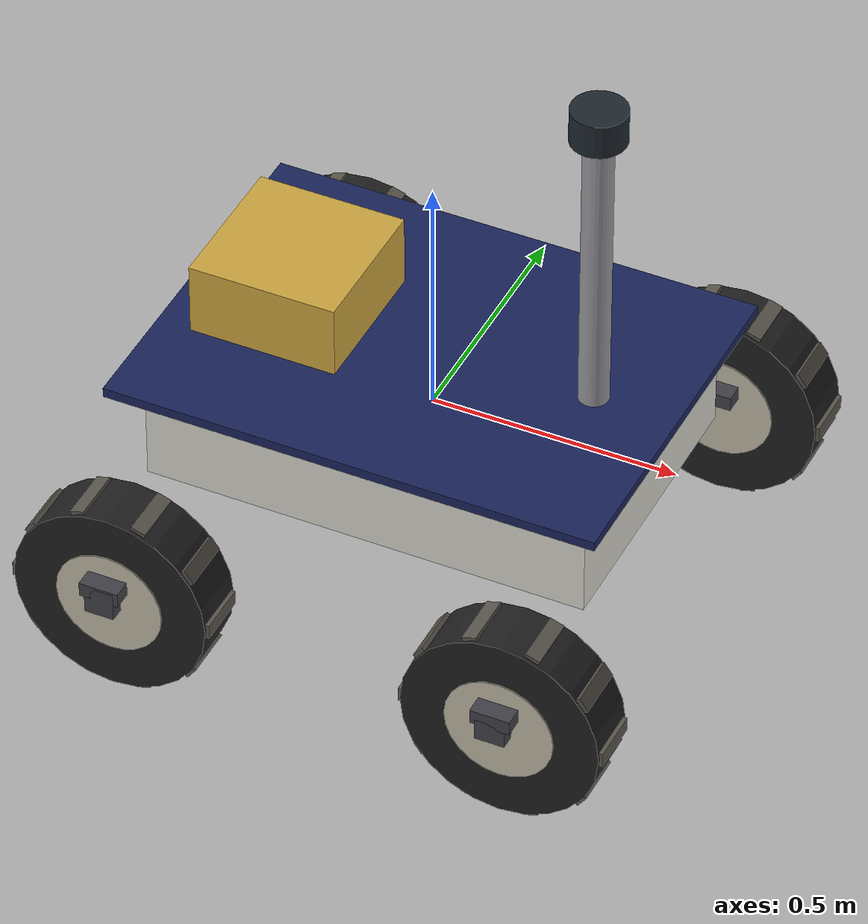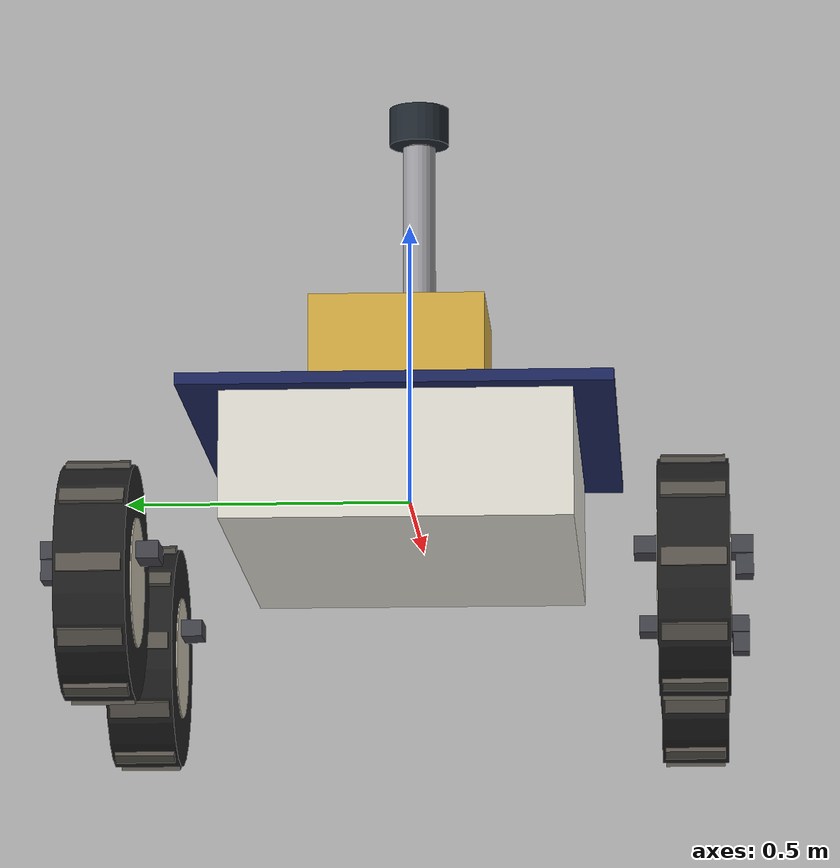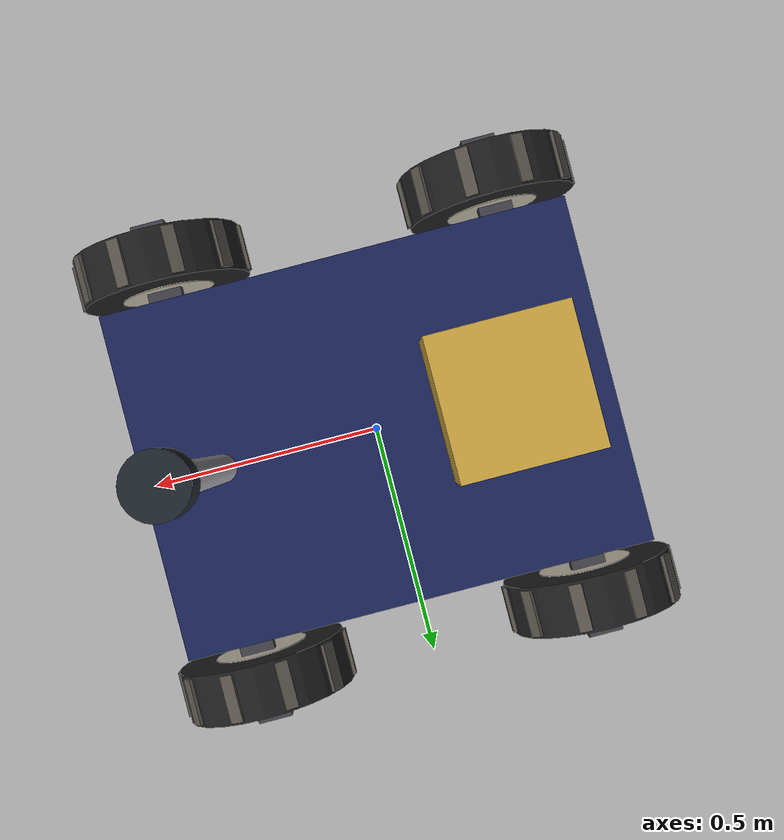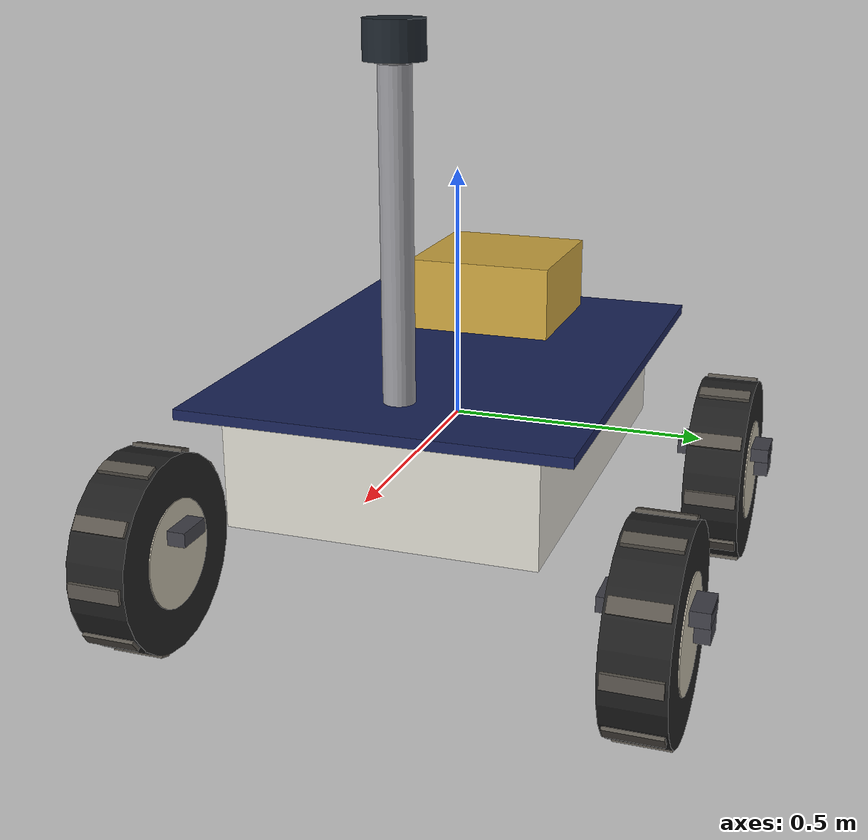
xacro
<?xml version="1.0"?>
<robot xmlns:xacro="http://ros.org/wiki/xacro" name="mars_rover">
  <xacro:arg name="enable_control" default="true"/>
  <xacro:arg name="sim_backend" default="classic"/>
  <xacro:arg name="actuator_watchdog" default="0.3"/>
  <xacro:arg name="enable_lidar" default="true"/>
  <xacro:arg name="lidar_profile" default="lite"/>
  <xacro:arg name="lidar_gpu" default="false"/>
  <xacro:arg name="lidar_channels" default=""/>
  <xacro:arg name="lidar_samples" default=""/>
  <xacro:arg name="lidar_vfov_deg" default=""/>
  <xacro:arg name="lidar_max_range" default="100.0"/>
  <xacro:arg name="mast_height" default="0.60"/>
  <xacro:arg name="wheel_collision" default="sphere"/>
  <xacro:arg name="wheel_stall_torque" default="8.0"/>
  <xacro:arg name="wheel_no_load_speed" default="10.0"/>
  <xacro:arg name="wheel_mu" default="0.8"/>
  <xacro:arg name="body_mass" default="26.0"/>
  <xacro:arg name="ground_truth_rate" default="50"/>
  <xacro:arg name="ground_truth_tf" default="false"/>
  <xacro:arg name="suspension_mode" default="spring"/>
  <xacro:arg name="strut_inertia_size" default="0.10"/>

  <xacro:include filename="modules/inertia.xacro"/>
  <xacro:include filename="modules/swerve_module.xacro"/>
  <xacro:include filename="sensors/imu.urdf.xacro"/>
  <xacro:include filename="sensors/lidar3d.urdf.xacro"/>

  <!-- Chassis -->
  <xacro:property name="body_length" value="0.90"/>
  <xacro:property name="body_width" value="0.60"/>
  <xacro:property name="body_height" value="0.22"/>
  <xacro:property name="body_mass" value="$(arg body_mass)"/>
  <xacro:property name="ground_clearance" value="0.30"/>  <!-- body bottom above ground at rest -->
  <xacro:property name="panel_mass" value="3.0"/>
  <xacro:property name="ebox_mass" value="3.0"/>
  <xacro:property name="mast_height" value="$(arg mast_height)"/>
  <xacro:property name="mast_mass" value="1.0"/>
  <xacro:property name="mast_x" value="${body_length/2-0.12}"/>
  <!-- Modules -->
  <xacro:property name="module_x" value="0.40"/>
  <xacro:property name="module_y" value="0.50"/>
  <xacro:property name="wheel_radius" value="0.20"/>
  <xacro:property name="wheel_width" value="0.12"/>
  <xacro:property name="wheel_mass" value="2.5"/>
  <xacro:property name="grouser_count" value="10"/>
  <xacro:property name="strut_mass" value="1.0"/>
  <xacro:property name="axle_mass" value="1.5"/>
  <xacro:property name="fork_offset" value="0.085"/>
  <!-- Vertical chain: body bottom -> strut (0.04) -> fork drop (0.06) -> wheel centre
       so that wheel centre = ground_clearance - 0.10 = 0.20 = wheel radius. -->
  <xacro:property name="strut_length" value="0.04"/>
  <xacro:property name="fork_drop" value="${ground_clearance - strut_length - wheel_radius}"/>
  <xacro:property name="suspension_travel" value="0.10"/>
  <xacro:property name="suspension_mode" value="$(arg suspension_mode)"/>
  <xacro:property name="strut_inertia_size" value="$(arg strut_inertia_size)"/>
  <xacro:property name="suspension_stiffness" value="1500.0"/>
  <xacro:property name="suspension_damping" value="110.0"/>
  <xacro:property name="suspension_reference" value="-0.0198"/>
  <xacro:property name="steering_torque" value="25.0"/>
  <xacro:property name="steering_rate" value="3.0"/>
  <xacro:property name="wheel_stall_torque" value="$(arg wheel_stall_torque)"/>
  <xacro:property name="wheel_no_load_speed" value="$(arg wheel_no_load_speed)"/>
  <xacro:property name="wheel_collision" value="$(arg wheel_collision)"/>
  <xacro:property name="wheel_mu" value="$(arg wheel_mu)"/>
  <xacro:property name="wheel_kp" value="1000000"/>
  <xacro:property name="wheel_kd" value="100"/>
  <xacro:property name="wheel_min_depth" value="0.002"/>
  <xacro:property name="wheel_max_vel" value="1.0"/>
  <xacro:property name="sim_backend" value="$(arg sim_backend)"/>

  <!-- Massless ROS root keeps KDL quiet; coincident with base_link. -->
  <link name="base_root"/>
  <joint name="base_root_joint" type="fixed">
    <parent link="base_root"/><child link="base_link"/>
    <origin xyz="0 0 0"/>
  </joint>

  <link name="base_link">
    <visual>
      <geometry><box size="${body_length} ${body_width} ${body_height}"/></geometry>
      <material name="body_white"><color rgba="0.85 0.84 0.80 1"/></material>
    </visual>
    <collision>
      <geometry><box size="${body_length} ${body_width} ${body_height}"/></geometry>
    </collision>
    <!-- Solar deck -->
    <visual>
      <origin xyz="0 0 ${body_height/2+0.01}"/>
      <geometry><box size="${body_length+0.10} ${body_width+0.14} 0.02"/></geometry>
      <material name="solar_blue"><color rgba="0.10 0.14 0.35 1"/></material>
    </visual>
    <!-- Electronics box at the rear of the deck -->
    <visual>
      <origin xyz="${-body_length/2+0.17} 0 ${body_height/2+0.02+0.075}"/>
      <geometry><box size="0.30 0.30 0.15"/></geometry>
      <material name="ebox_gold"><color rgba="0.80 0.65 0.25 1"/></material>
    </visual>
    <!-- Instrument mast, front-centre of the deck -->
    <visual>
      <origin xyz="${mast_x} 0 ${body_height/2+0.02+mast_height/2}"/>
      <geometry><cylinder radius="0.03" length="${mast_height}"/></geometry>
      <material name="mast_grey"><color rgba="0.6 0.6 0.62 1"/></material>
    </visual>
    <!-- Combined inertia of body, deck, e-box and mast about the body centre.
         Payload masses are small and placed by parallel-axis terms below. -->
    <inertial>
      <mass value="${body_mass + panel_mass + ebox_mass + mast_mass}"/>
      <origin xyz="${(ebox_mass*(-body_length/2+0.17) + mast_mass*mast_x)/(body_mass+panel_mass+ebox_mass+mast_mass)} 0 ${(panel_mass*(body_height/2+0.01) + ebox_mass*(body_height/2+0.095) + mast_mass*(body_height/2+0.02+mast_height/2))/(body_mass+panel_mass+ebox_mass+mast_mass)}"/>
      <inertia ixx="${body_mass*(body_width**2+body_height**2)/12 + panel_mass*((body_width+0.14)**2+0.02**2)/12 + panel_mass*(body_height/2+0.01)**2 + ebox_mass*(0.3**2+0.15**2)/12 + ebox_mass*(body_height/2+0.095)**2 + mast_mass*(3*0.03**2+mast_height**2)/12 + mast_mass*(body_height/2+0.02+mast_height/2)**2}"
               ixy="0" ixz="0"
               iyy="${body_mass*(body_length**2+body_height**2)/12 + panel_mass*((body_length+0.10)**2+0.02**2)/12 + panel_mass*(body_height/2+0.01)**2 + ebox_mass*(0.3**2+0.15**2)/12 + ebox_mass*((body_height/2+0.095)**2+(-body_length/2+0.17)**2) + mast_mass*(3*0.03**2+mast_height**2)/12 + mast_mass*((body_height/2+0.02+mast_height/2)**2+mast_x**2)}"
               iyz="0"
               izz="${body_mass*(body_length**2+body_width**2)/12 + panel_mass*((body_length+0.10)**2+(body_width+0.14)**2)/12 + ebox_mass*(0.3**2+0.3**2)/12 + ebox_mass*(-body_length/2+0.17)**2 + mast_mass*0.03**2/2 + mast_mass*mast_x**2}"/>
    </inertial>
  </link>
  <gazebo reference="base_link"><material>Gazebo/White</material></gazebo>

  <xacro:swerve_module prefix="front_left" x="${module_x}" y="${module_y}" side="1"/>
  <xacro:swerve_module prefix="front_right" x="${module_x}" y="${-module_y}" side="-1"/>
  <xacro:swerve_module prefix="rear_left" x="${-module_x}" y="${module_y}" side="1"/>
  <xacro:swerve_module prefix="rear_right" x="${-module_x}" y="${-module_y}" side="-1"/>

  <xacro:rover_imu parent="base_link" backend="${sim_backend}"/>
  <xacro:if value="$(arg enable_lidar)">
    <xacro:rover_lidar3d parent="base_link" xyz="${mast_x} 0 ${body_height/2+0.02+mast_height+0.04}"
                         profile="$(arg lidar_profile)" gpu="$(arg lidar_gpu)" channels="$(arg lidar_channels)"
                         samples="$(arg lidar_samples)" vfov_deg="$(arg lidar_vfov_deg)" max_range="$(arg lidar_max_range)"
                         backend="${sim_backend}"/>
  </xacro:if>

  <xacro:if value="$(arg enable_control)">
    <xacro:if value="${sim_backend == 'classic'}">
      <gazebo>
        <plugin name="swerve_actuators" filename="librover_swerve_actuators.so">
          <watchdog_timeout>$(arg actuator_watchdog)</watchdog_timeout>
          <ground_truth_rate>$(arg ground_truth_rate)</ground_truth_rate>
          <ground_truth_tf>$(arg ground_truth_tf)</ground_truth_tf>
          <steering_kp>60.0</steering_kp>
          <steering_kd>3.0</steering_kd>
          <wheel_kp>3.0</wheel_kp>
          <wheel_ki>20.0</wheel_ki>
        </plugin>
      </gazebo>
    </xacro:if>
    <xacro:if value="${sim_backend == 'fortress'}">
      <gazebo>
        <plugin filename="librover_swerve_gz_system.so" name="rover_sim::SwerveGzSystem">
          <watchdog_timeout>$(arg actuator_watchdog)</watchdog_timeout>
          <ground_truth_rate>$(arg ground_truth_rate)</ground_truth_rate>
          <ground_truth_tf>$(arg ground_truth_tf)</ground_truth_tf>
          <steering_kp>60.0</steering_kp>
          <steering_kd>3.0</steering_kd>
          <wheel_kp>3.0</wheel_kp>
          <wheel_ki>20.0</wheel_ki>
          <hold_kp>40.0</hold_kp>
          <hold_kd>6.0</hold_kd>
          <wheel_radius>${wheel_radius}</wheel_radius>
        </plugin>
      </gazebo>
    </xacro:if>
  </xacro:if>
</robot>

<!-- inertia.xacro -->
<!-- Original inertia helpers for rover_sim (solid primitives about their centroid). -->
<robot xmlns:xacro="http://ros.org/wiki/xacro">
  <xacro:macro name="inertial_box" params="mass x y z *origin">
    <inertial>
      <mass value="${mass}"/>
      <xacro:insert_block name="origin"/>
      <inertia ixx="${mass*(y*y+z*z)/12.0}" ixy="0" ixz="0"
               iyy="${mass*(x*x+z*z)/12.0}" iyz="0"
               izz="${mass*(x*x+y*y)/12.0}"/>
    </inertial>
  </xacro:macro>
  <!-- Cylinder with its axis along local Z. -->
  <xacro:macro name="inertial_cylinder" params="mass radius length *origin">
    <inertial>
      <mass value="${mass}"/>
      <xacro:insert_block name="origin"/>
      <inertia ixx="${mass*(3.0*radius*radius+length*length)/12.0}" ixy="0" ixz="0"
               iyy="${mass*(3.0*radius*radius+length*length)/12.0}" iyz="0"
               izz="${mass*radius*radius/2.0}"/>
    </inertial>
  </xacro:macro>
  <xacro:macro name="inertial_sphere" params="mass radius *origin">
    <inertial>
      <mass value="${mass}"/>
      <xacro:insert_block name="origin"/>
      <inertia ixx="${0.4*mass*radius*radius}" ixy="0" ixz="0"
               iyy="${0.4*mass*radius*radius}" iyz="0"
               izz="${0.4*mass*radius*radius}"/>
    </inertial>
  </xacro:macro>
</robot>

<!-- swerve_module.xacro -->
<robot xmlns:xacro="http://ros.org/wiki/xacro">
  <xacro:macro name="swerve_module" params="prefix x y side">
    <!-- Suspension: strut travels vertically relative to the body. -->
    <link name="${prefix}_strut">
      <visual>
        <origin xyz="0 0 ${-strut_length/2}"/>
        <geometry><cylinder radius="0.025" length="${strut_length}"/></geometry>
        <material name="strut_grey"><color rgba="0.55 0.55 0.58 1"/></material>
      </visual>
      <!-- Inertia of a 0.10 m cube rather than the thin visual: ODE needs
           comparable inertias along a chain of jointed links. -->
      <xacro:inertial_box mass="${strut_mass}" x="${strut_inertia_size}" y="${strut_inertia_size}" z="${strut_inertia_size}">
        <origin xyz="0 0 ${-strut_length/2}"/>
      </xacro:inertial_box>
    </link>
    <xacro:if value="${suspension_mode == 'rigid'}">
      <joint name="${prefix}_suspension" type="fixed">
        <parent link="base_link"/>
        <child link="${prefix}_strut"/>
        <origin xyz="${x} ${y} ${-body_height/2}"/>
      </joint>
    </xacro:if>
    <xacro:unless value="${suspension_mode == 'rigid'}">
      <joint name="${prefix}_suspension" type="prismatic">
        <parent link="base_link"/>
        <child link="${prefix}_strut"/>
        <origin xyz="${x} ${y} ${-body_height/2}"/>
        <axis xyz="0 0 1"/>
        <limit lower="${-suspension_travel}" upper="${suspension_travel}" effort="2000" velocity="3.0"/>
        <dynamics damping="${suspension_damping}" friction="0.0"/>
      </joint>
      <xacro:if value="${suspension_mode == 'spring'}">
        <gazebo reference="${prefix}_suspension">
          <springStiffness>${suspension_stiffness}</springStiffness>
          <springReference>${suspension_reference}</springReference>
          <implicitSpringDamper>true</implicitSpringDamper>
          <provideFeedback>true</provideFeedback>
        </gazebo>
      </xacro:if>
    </xacro:unless>
    <gazebo reference="${prefix}_strut"><material>Gazebo/Grey</material></gazebo>

    <!-- Steering: the axle fork rotates about the vertical kingpin. -->
    <link name="${prefix}_axle">
      <visual>
        <origin xyz="0 ${side*fork_offset} ${-fork_drop/2}"/>
        <geometry><box size="0.06 0.03 ${fork_drop}"/></geometry>
        <material name="fork_dark"><color rgba="0.25 0.25 0.28 1"/></material>
      </visual>
      <visual>
        <origin xyz="0 0 -0.01"/>
        <geometry><box size="0.08 ${2*fork_offset+0.03} 0.03"/></geometry>
        <material name="fork_dark"><color rgba="0.25 0.25 0.28 1"/></material>
      </visual>
      <xacro:inertial_box mass="${axle_mass}" x="0.08" y="${2*fork_offset+0.03}" z="${fork_drop}">
        <origin xyz="0 0 ${-fork_drop/2}"/>
      </xacro:inertial_box>
    </link>
    <joint name="${prefix}_kingpin" type="continuous">
      <parent link="${prefix}_strut"/>
      <child link="${prefix}_axle"/>
      <origin xyz="0 0 ${-strut_length}"/>
      <axis xyz="0 0 1"/>
      <limit effort="${steering_torque}" velocity="${steering_rate}"/>
      <dynamics damping="0.1" friction="0.02"/>
    </joint>
    <gazebo reference="${prefix}_axle"><material>Gazebo/DarkGrey</material></gazebo>

    <!-- Wheel: visual tyre with grousers, collision selected by wheel_collision. -->
    <link name="${prefix}_wheel">
      <visual>
        <geometry><cylinder radius="${wheel_radius}" length="${wheel_width}"/></geometry>
        <material name="tyre"><color rgba="0.12 0.12 0.12 1"/></material>
      </visual>
      <visual>
        <geometry><cylinder radius="${wheel_radius*0.55}" length="${wheel_width+0.004}"/></geometry>
        <material name="hub"><color rgba="0.75 0.72 0.65 1"/></material>
      </visual>
      <xacro:grousers count="${grouser_count}" index="0"/>
      <xacro:if value="${wheel_collision == 'sphere'}">
        <collision><geometry><sphere radius="${wheel_radius}"/></geometry></collision>
      </xacro:if>
      <xacro:if value="${wheel_collision == 'multisphere'}">
        <collision><origin xyz="0 0 ${-wheel_width/3}"/><geometry><sphere radius="${wheel_radius}"/></geometry></collision>
        <collision><geometry><sphere radius="${wheel_radius}"/></geometry></collision>
        <collision><origin xyz="0 0 ${wheel_width/3}"/><geometry><sphere radius="${wheel_radius}"/></geometry></collision>
      </xacro:if>
      <xacro:if value="${wheel_collision == 'cylinder'}">
        <collision><geometry><cylinder radius="${wheel_radius}" length="${wheel_width}"/></geometry></collision>
      </xacro:if>
      <xacro:if value="${wheel_collision == 'band'}">
        <collision><geometry><cylinder radius="${wheel_radius}" length="0.02"/></geometry></collision>
      </xacro:if>
      <xacro:inertial_cylinder mass="${wheel_mass}" radius="${wheel_radius}" length="${wheel_width}">
        <origin xyz="0 0 0"/>
      </xacro:inertial_cylinder>
    </link>
    <joint name="${prefix}_wheel_joint" type="continuous">
      <parent link="${prefix}_axle"/>
      <child link="${prefix}_wheel"/>
      <!-- Cylinder axis (local Z) becomes the lateral (-Y) axle: forward
           rolling is a negative joint rate, as the kinematics derive. -->
      <origin xyz="0 0 ${-fork_drop}" rpy="${pi/2} 0 0"/>
      <axis xyz="0 0 1"/>
      <limit effort="${wheel_stall_torque}" velocity="${wheel_no_load_speed}"/>
      <dynamics damping="0.05" friction="0.05"/>
    </joint>
    <gazebo reference="${prefix}_wheel">
      <material>Gazebo/FlatBlack</material>
      <mu1>${wheel_mu}</mu1><mu2>${wheel_mu}</mu2>
      <kp>${wheel_kp}</kp><kd>${wheel_kd}</kd>
      <minDepth>${wheel_min_depth}</minDepth><maxVel>${wheel_max_vel}</maxVel>
    </gazebo>
  </xacro:macro>

  <!-- Visual-only grousers (cleats) around the tyre, recursive xacro loop. -->
  <xacro:macro name="grousers" params="count index">
    <xacro:if value="${count > index}">
      <visual>
        <origin xyz="${wheel_radius*cos(2*pi*index/count)} ${wheel_radius*sin(2*pi*index/count)} 0"
                rpy="0 0 ${2*pi*index/count}"/>
        <geometry><box size="0.012 0.03 ${wheel_width*0.9}"/></geometry>
        <material name="grouser"><color rgba="0.35 0.33 0.30 1"/></material>
      </visual>
      <xacro:grousers count="${count}" index="${index+1}"/>
    </xacro:if>
  </xacro:macro>
</robot>

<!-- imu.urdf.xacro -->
<!-- Chassis IMU (gazebo_ros_imu_sensor) publishing /imu/data with noise and bias. -->
<robot xmlns:xacro="http://ros.org/wiki/xacro">
  <xacro:macro name="rover_imu" params="parent xyz:='0 0 0' backend:='classic'">
    <link name="imu_link">
      <inertial>
        <mass value="0.02"/>
        <inertia ixx="1e-6" ixy="0" ixz="0" iyy="1e-6" iyz="0" izz="1e-6"/>
      </inertial>
    </link>
    <joint name="imu_joint" type="fixed">
      <parent link="${parent}"/><child link="imu_link"/>
      <origin xyz="${xyz}" rpy="0 0 0"/>
    </joint>
    <gazebo reference="imu_link">
      <sensor name="imu" type="imu">
        <always_on>true</always_on>
        <update_rate>100</update_rate>
        <visualize>false</visualize>
        <imu>
          <angular_velocity>
            <x><noise type="gaussian"><mean>0</mean><stddev>0.002</stddev><bias_mean>0.0005</bias_mean><bias_stddev>0.0001</bias_stddev></noise></x>
            <y><noise type="gaussian"><mean>0</mean><stddev>0.002</stddev><bias_mean>0.0005</bias_mean><bias_stddev>0.0001</bias_stddev></noise></y>
            <z><noise type="gaussian"><mean>0</mean><stddev>0.002</stddev><bias_mean>0.0005</bias_mean><bias_stddev>0.0001</bias_stddev></noise></z>
          </angular_velocity>
          <linear_acceleration>
            <x><noise type="gaussian"><mean>0</mean><stddev>0.02</stddev><bias_mean>0.01</bias_mean><bias_stddev>0.002</bias_stddev></noise></x>
            <y><noise type="gaussian"><mean>0</mean><stddev>0.02</stddev><bias_mean>0.01</bias_mean><bias_stddev>0.002</bias_stddev></noise></y>
            <z><noise type="gaussian"><mean>0</mean><stddev>0.02</stddev><bias_mean>0.01</bias_mean><bias_stddev>0.002</bias_stddev></noise></z>
          </linear_acceleration>
        </imu>
        <xacro:if value="${backend == 'classic'}">
          <plugin name="imu_ros" filename="libgazebo_ros_imu_sensor.so">
            <ros><remapping>~/out:=/imu/data</remapping></ros>
            <frame_name>imu_link</frame_name>
            <initial_orientation_as_reference>false</initial_orientation_as_reference>
          </plugin>
        </xacro:if>
        <xacro:if value="${backend == 'fortress'}">
          <!-- gz-sim Imu system publishes on this gz topic; ros_gz_bridge maps it to /imu/data -->
          <topic>imu</topic>
          <ignition_frame_id>imu_link</ignition_frame_id>
        </xacro:if>
      </sensor>
    </gazebo>
  </xacro:macro>
</robot>

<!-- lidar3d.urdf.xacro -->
<robot xmlns:xacro="http://ros.org/wiki/xacro">
  <xacro:macro name="rover_lidar3d" params="parent xyz profile gpu channels:='' samples:='' vfov_deg:='' max_range:=100.0 backend:='classic'">
    <xacro:property name="lidar_channels" value="${int(channels) if str(channels) else (64 if profile == 'dense' else (32 if profile == 'high' else 16))}"/>
    <xacro:property name="lidar_samples" value="${int(samples) if str(samples) else (1024 if profile in ('high', 'dense') else (900 if profile == 'standard' else 450))}"/>
    <xacro:property name="lidar_vfov" value="${radians(float(vfov_deg)) if str(vfov_deg) else (radians(45.0) if profile in ('high', 'dense') else radians(30.0))}"/>
    <xacro:property name="lidar_type" value="${'gpu_ray' if str(gpu).lower() in ('true', '1') else 'ray'}"/>
    <link name="lidar_link">
      <inertial>
        <mass value="0.8"/>
        <origin xyz="0 0 0"/>
        <!-- Solid cylinder r = 0.055 m, h = 0.07 m -->
        <inertia ixx="0.00093" ixy="0" ixz="0" iyy="0.00093" iyz="0" izz="0.00121"/>
      </inertial>
      <visual>
        <geometry><cylinder radius="0.055" length="0.07"/></geometry>
        <material name="lidar_dark"><color rgba="0.12 0.15 0.18 1"/></material>
      </visual>
      <visual>
        <origin xyz="0 0 -0.045"/>
        <geometry><cylinder radius="0.02" length="0.02"/></geometry>
        <material name="lidar_mount"><color rgba="0.45 0.45 0.45 1"/></material>
      </visual>
    </link>
    <joint name="lidar_joint" type="fixed">
      <parent link="${parent}"/><child link="lidar_link"/>
      <origin xyz="${xyz}" rpy="0 0 0"/>
    </joint>
    <gazebo reference="lidar_link">
      <material>Gazebo/Black</material>
      <sensor name="lidar3d" type="${'gpu_lidar' if backend == 'fortress' else lidar_type}">
        <pose>0 0 0 0 0 0</pose>
        <always_on>true</always_on>
        <update_rate>10</update_rate>
        <visualize>false</visualize>
        <xacro:if value="${backend == 'fortress'}">
          <!-- gz-sim gpu_lidar: exact beam labels, so no extra beam/shift is needed -->
          <topic>points_raw</topic>
          <ignition_frame_id>lidar_link</ignition_frame_id>
          <lidar>
            <scan>
              <horizontal>
                <samples>${lidar_samples}</samples><resolution>1</resolution>
                <min_angle>${-pi}</min_angle><max_angle>${pi}</max_angle>
              </horizontal>
              <vertical>
                <samples>${lidar_channels}</samples><resolution>1</resolution>
                <min_angle>${-lidar_vfov/2 if lidar_channels > 1 else 0.0}</min_angle><max_angle>${lidar_vfov/2 if lidar_channels > 1 else 0.0}</max_angle>
              </vertical>
            </scan>
            <range><min>0.5</min><max>${max_range}</max><resolution>0.002</resolution></range>
            <noise><type>gaussian</type><mean>0.0</mean><stddev>0.02</stddev></noise>
          </lidar>
        </xacro:if>
        <xacro:if value="${backend == 'classic'}">
        <ray>
          <scan>
            <horizontal>
              <samples>${lidar_samples}</samples><resolution>1</resolution>
              <min_angle>${-pi}</min_angle><max_angle>${pi}</max_angle>
            </horizontal>
            <vertical>
              <samples>${lidar_channels + (1 if (lidar_type == 'gpu_ray' and lidar_channels > 1) else 0)}</samples><resolution>1</resolution>
              <min_angle>${(-lidar_vfov/2 - (lidar_vfov/(lidar_channels-1) if lidar_type == 'gpu_ray' else 0.0)) if lidar_channels > 1 else 0.0}</min_angle><max_angle>${lidar_vfov/2 if lidar_channels > 1 else 0.0}</max_angle>
            </vertical>
          </scan>
          <range><min>0.5</min><max>${max_range}</max><resolution>0.002</resolution></range>
          <noise><type>gaussian</type><mean>0.0</mean><stddev>0.02</stddev></noise>
        </ray>
        <plugin name="lidar3d_ros" filename="libgazebo_ros_ray_sensor.so">
          <ros><remapping>~/out:=/points_raw</remapping></ros>
          <output_type>sensor_msgs/PointCloud2</output_type>
          <frame_name>lidar_link</frame_name>
        </plugin>
        </xacro:if>
      </sensor>
    </gazebo>
  </xacro:macro>
</robot>
